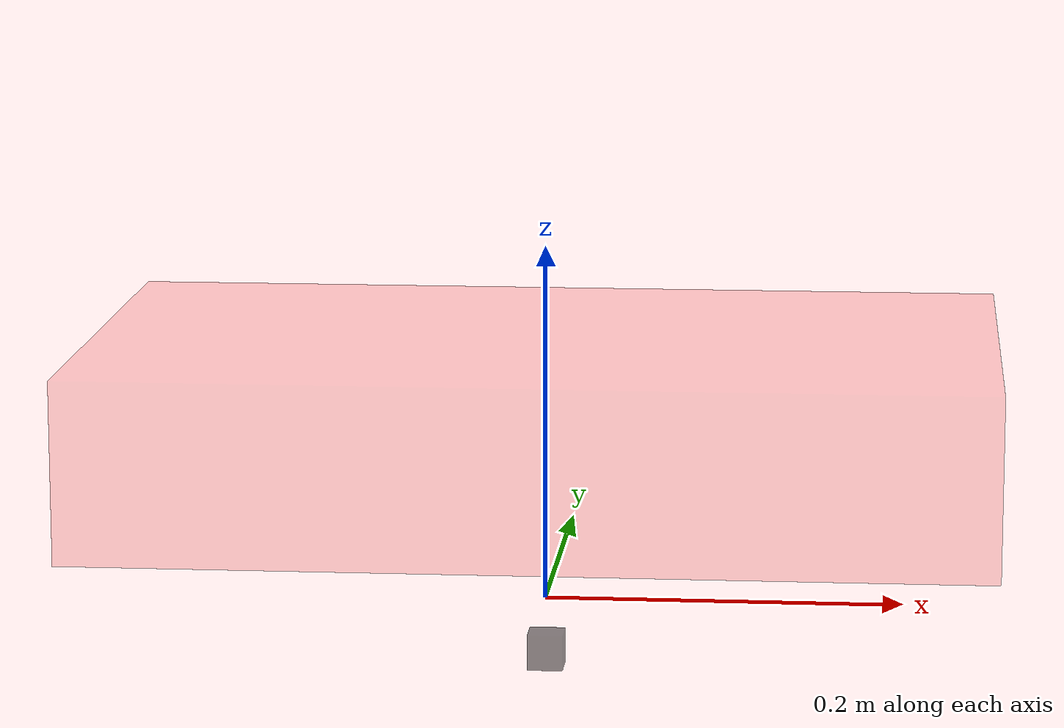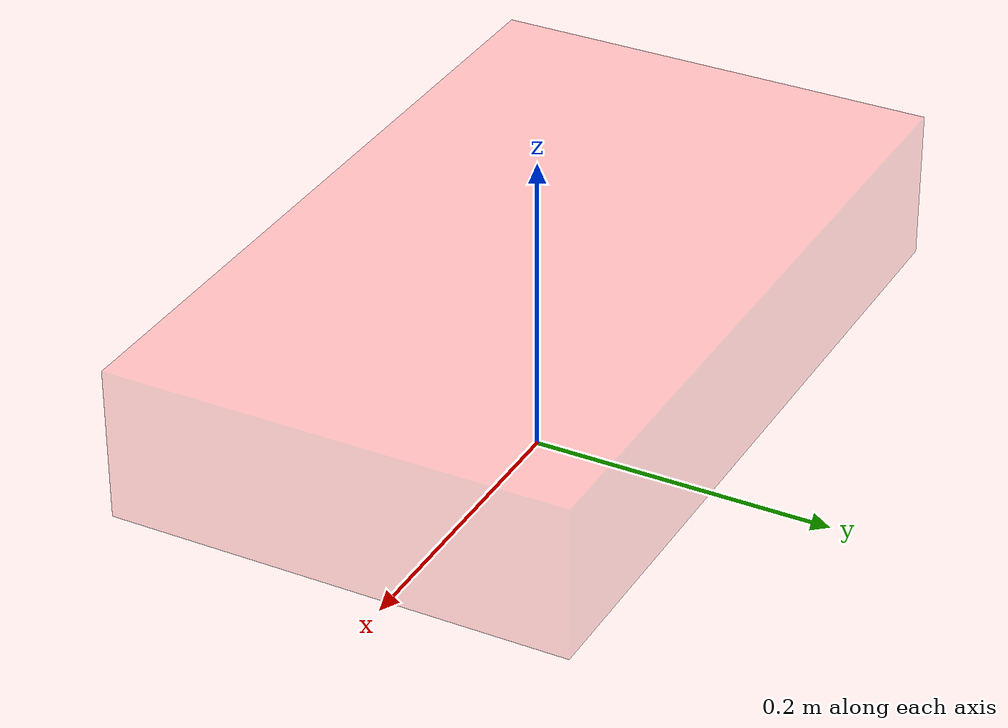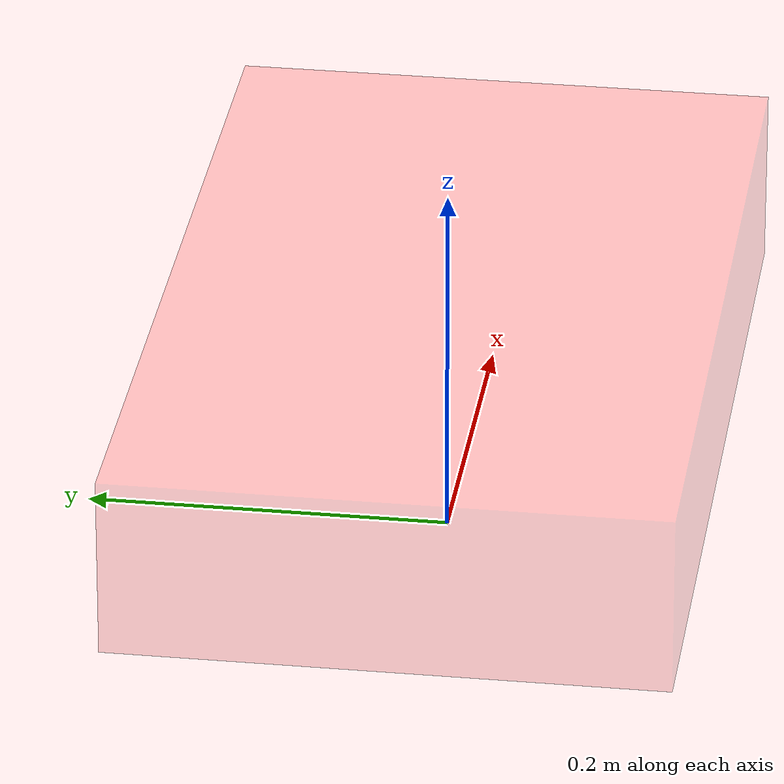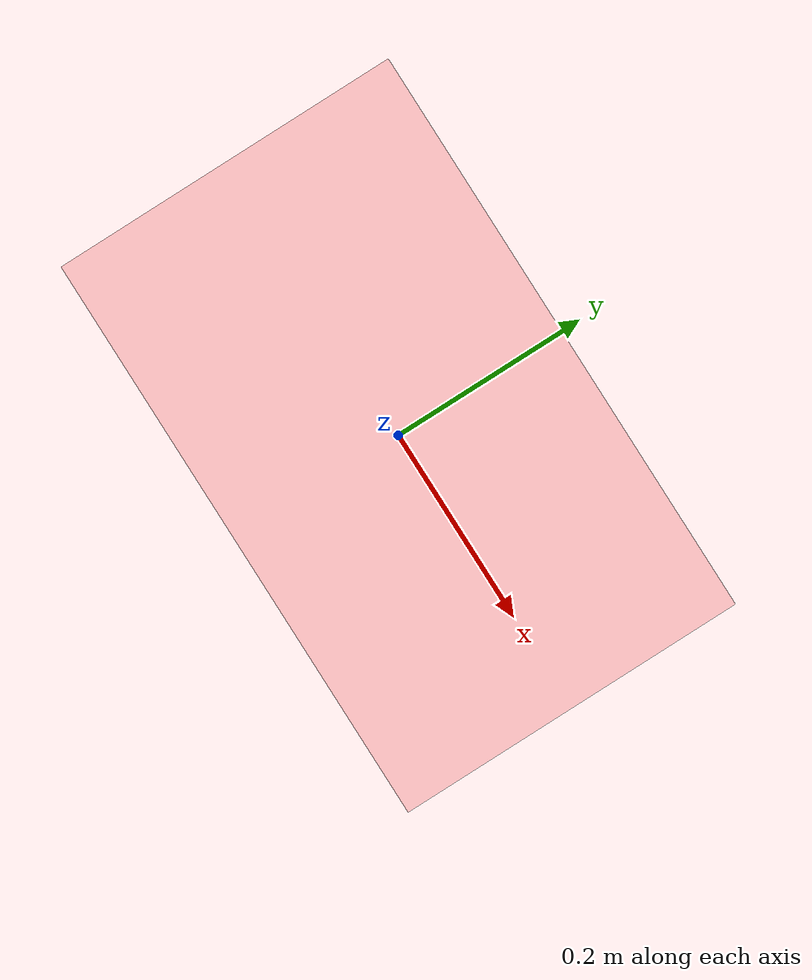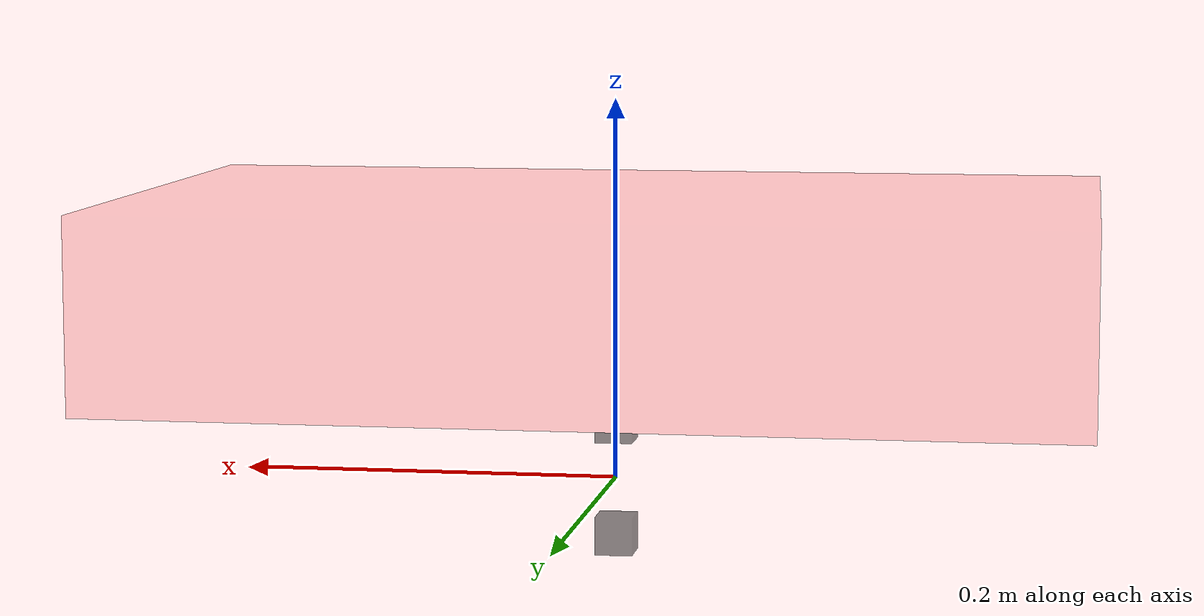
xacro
<?xml version="1.0"?>

<robot xmlns:xacro="http://www.ros.org/wiki/xacro" name = "first_robot">
    <xacro:macro name = "base_link" params = "length width height">
        <!-- 机器人的身体部件 -->
        <link name = "base_link">
            <!-- 部件的外观描述 -->
            <visual>
                <!-- 相对于它所属 link 原点的位置偏移 -->
                <origin xyz="0 0 0.1" rpy="0 0 0"/>
                <!-- 几何形状 -->
                <geometry>
                    <box size="${length} ${width} ${height}"/>   <!-- 长lengthm 宽widthm 高heightm -->
                </geometry>
                <!-- 材质颜色 -->
                <material name="red">
                    <color rgba="1 0 0 0.2"/>    <!-- 红 绿 蓝 透明度，范围0~1 -->
                </material>
            </visual>
        </link>
    </xacro:macro>

    <xacro:macro name = "imu_link" params = "imu_name xyz">
        <!-- 机器人的IMU部件 -->
        <link name = "${imu_name}">
            <!-- 部件的外观描述 -->
            <visual>
                <!-- 相对于它所属 link 原点的位置偏移 -->
                <origin xyz="0 0 0" rpy="0 0 0"/>
                <!-- 几何形状 -->
                <geometry>
                    <box size="0.02 0.02 0.02"/>
                </geometry>
                <!-- 材质颜色 -->
                <material name="gray">
                    <color rgba="0 0 0 0.5"/>
                </material>
            </visual>
        </link>

        <!-- 机器人的关节，用于组合机器人的部件 -->
        <joint name = "${imu_name}_joint" type = "fixed">
            <parent link = "base_link"/>
            <child link = "${imu_name}"/>
            <origin xyz="${xyz}" rpy="0 0 0"/> <!-- child(${imu_name}) 相对于 parent(base_link) 的偏移 -->
        </joint>
    </xacro:macro>

    <!-- 机器人的身体部件 -->
    <xacro:base_link length="0.5" width="0.3" height="0.1"/>
    <!-- 机器人的IMU部件 -->
    <xacro:imu_link imu_name="imu_up" xyz="0 0 0.03"/>
    <xacro:imu_link imu_name="imu_down" xyz="0 0 -0.03"/>
</robot>
